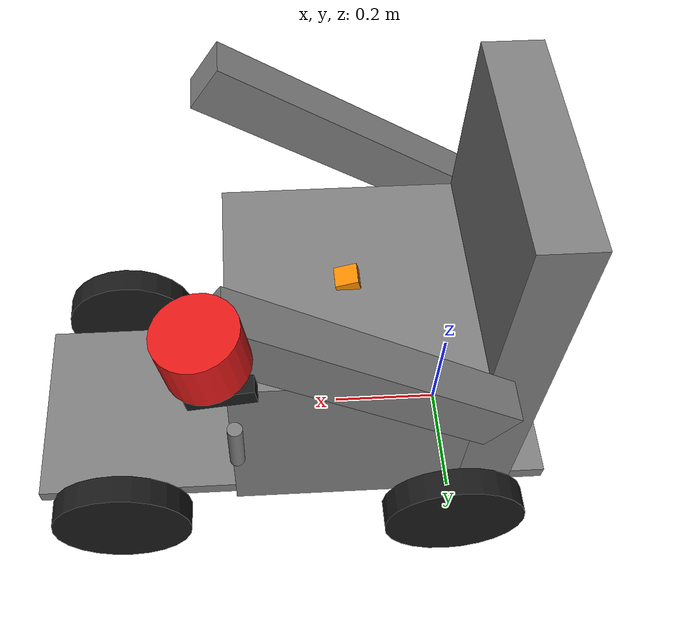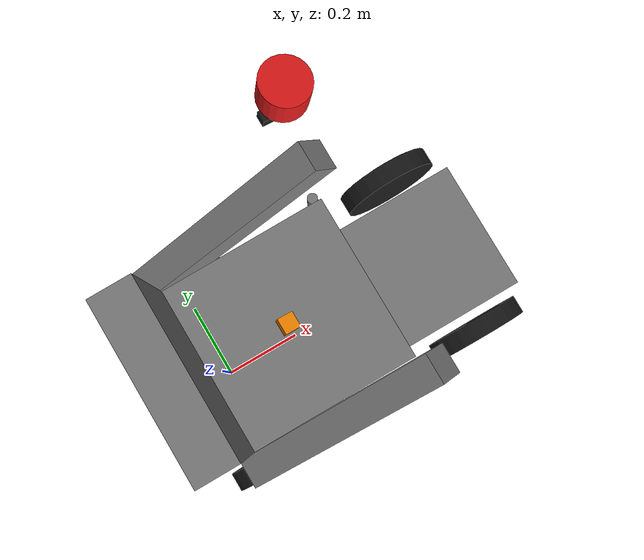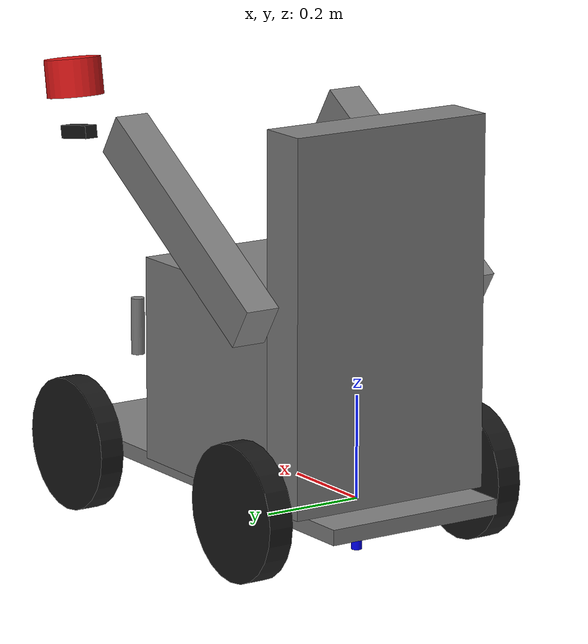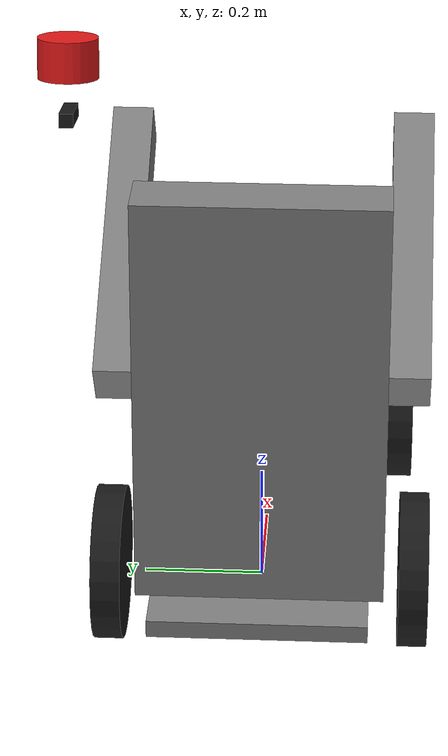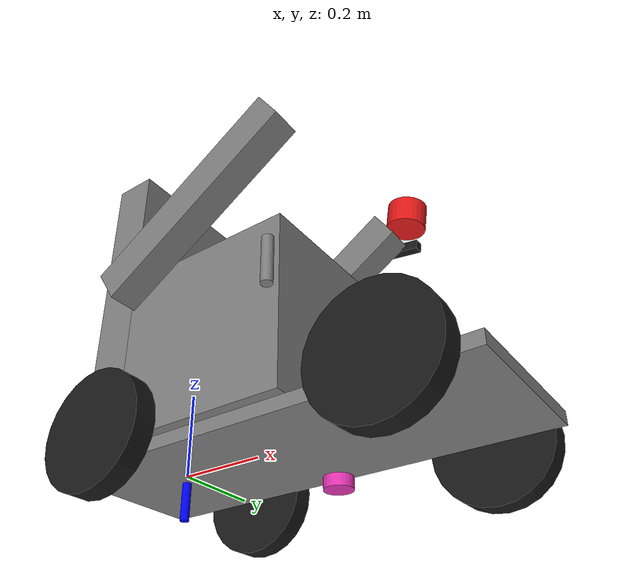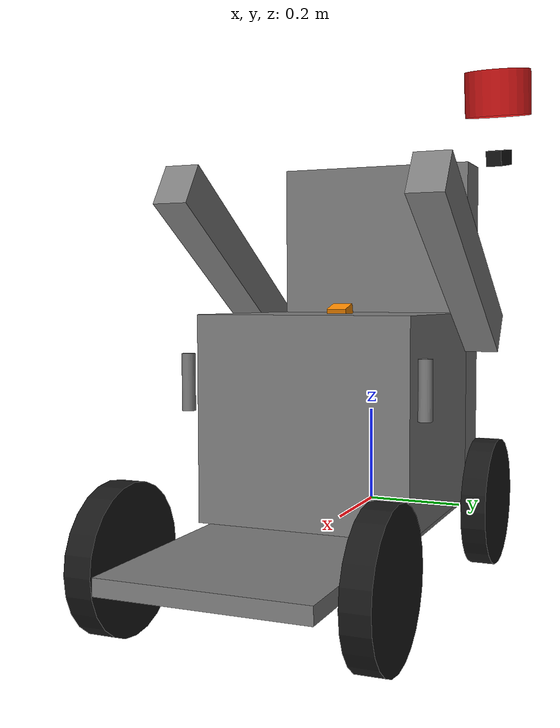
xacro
<?xml version="1.0"?>
<robot xmlns:xacro="http://www.ros.org/wiki/xacro" name="whill_cr2_with_sensors">

  <xacro:include filename="$(find whill_description)/urdf/whill_model_cr2.urdf"/>

  <xacro:property name="base_link_to_ground_z" value="-0.1175"/>

  <xacro:property name="imu_x"     value="0.20"/>
  <xacro:property name="imu_y"     value="0.0"/>
  <xacro:property name="imu_z"     value="0.42"/>
  <xacro:property name="imu_roll"  value="0.0"/>
  <xacro:property name="imu_pitch" value="0.286"/>
  <xacro:property name="imu_yaw"   value="0.0"/>

  <xacro:property name="velodyne_x"     value="0.42"/>
  <xacro:property name="velodyne_y"     value="0.36"/>
  <xacro:property name="velodyne_z"     value="0.78"/>
  <xacro:property name="velodyne_roll"  value="0.0"/>
  <xacro:property name="velodyne_pitch" value="0.157"/>
  <xacro:property name="velodyne_yaw"   value="0.0"/>

  <xacro:property name="camera_x"     value="0.0"/>
  <xacro:property name="camera_y"     value="0.0"/>
  <xacro:property name="camera_z"     value="-0.103"/>
  <xacro:property name="camera_roll"  value="0.0"/>
  <xacro:property name="camera_pitch" value="0.0"/>
  <xacro:property name="camera_yaw"   value="0.0"/>

  <xacro:property name="gnss_x"     value="0.40"/>
  <xacro:property name="gnss_y"     value="0.0"/>
  <xacro:property name="gnss_z"     value="-0.10"/>
  <xacro:property name="gnss_roll"  value="0.0"/>
  <xacro:property name="gnss_pitch" value="0.0"/>
  <xacro:property name="gnss_yaw"   value="0.0"/>

  <!-- ====================================================================
       Links and joints
       ==================================================================== -->

  <link name="base_footprint"/>
  <joint name="base_link_to_base_footprint" type="fixed">
    <parent link="base_link"/>
    <child  link="base_footprint"/>
    <origin xyz="0 0 ${base_link_to_ground_z}" rpy="0 0 0"/>
  </joint>

  <!-- IMU: RT 9-axis USB IMU. Visual is a small orange box so the chair
       model shows clearly where the IMU sits in RViz. -->
  <link name="imu_link">
    <visual>
      <geometry>
        <box size="0.04 0.04 0.02"/>
      </geometry>
      <material name="imu_orange">
        <color rgba="1.0 0.55 0.0 1.0"/>
      </material>
    </visual>
  </link>
  <joint name="base_link_to_imu" type="fixed">
    <parent link="base_link"/>
    <child  link="imu_link"/>
    <origin xyz="${imu_x} ${imu_y} ${imu_z}"
            rpy="${imu_roll} ${imu_pitch} ${imu_yaw}"/>
  </joint>

  <link name="velodyne">
    <visual>
      <geometry>
        <cylinder length="0.072" radius="0.054"/>
      </geometry>
      <material name="velodyne_red">
        <color rgba="0.9 0.1 0.1 1.0"/>
      </material>
    </visual>
  </link>
  <joint name="base_link_to_velodyne" type="fixed">
    <parent link="base_link"/>
    <child  link="velodyne"/>
    <origin xyz="${velodyne_x} ${velodyne_y} ${velodyne_z}"
            rpy="${velodyne_roll} ${velodyne_pitch} ${velodyne_yaw}"/>
  </joint>

  <link name="camera_link">
    <visual>
      <geometry>
        <box size="0.090 0.025 0.025"/>
      </geometry>
      <material name="camera_black">
        <color rgba="0.1 0.1 0.1 1.0"/>
      </material>
    </visual>
  </link>
  <joint name="velodyne_to_camera" type="fixed">
    <parent link="velodyne"/>
    <child  link="camera_link"/>
    <origin xyz="${camera_x} ${camera_y} ${camera_z}"
            rpy="${camera_roll} ${camera_pitch} ${camera_yaw}"/>
  </joint>

  <link name="gnss_link">
    <visual>
      <geometry>
        <cylinder length="0.025" radius="0.030"/>
      </geometry>
      <material name="gnss_magenta">
        <color rgba="0.9 0.2 0.7 1.0"/>
      </material>
    </visual>
  </link>
  <joint name="base_link_to_gnss" type="fixed">
    <parent link="base_link"/>
    <child  link="gnss_link"/>
    <origin xyz="${gnss_x} ${gnss_y} ${gnss_z}"
            rpy="${gnss_roll} ${gnss_pitch} ${gnss_yaw}"/>
  </joint>

</robot>

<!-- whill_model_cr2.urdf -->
<robot name="whill_model_cr2">

    <link name="base_link">
        <visual>
            <geometry>
                <cylinder length="0.2" radius="0.01"/>
            </geometry>
            <material name="blue">
                <color rgba="0.0 0.0 1.0 1.0"/>
            </material>
        </visual>
    </link>

    <link name="base_floor">
        <visual>
            <geometry>
                <box size="0.985 0.37 0.03"/>
            </geometry>
            <material name="grey">
                <color rgba="0.5 0.5 0.5 1.0"/>
            </material>
        </visual>
        <collision>
            <geometry>
                <box size="0.985 0.37 0.03"/>
            </geometry>
        </collision>
        <inertial>
            <origin xyz="0 0 0" rpy="0 0 0" />
            <mass value="30" />
            <inertia ixx="1.0"  ixy="0.0"   ixz="0.0"
                                iyy="1.0"   iyz="0.0"
                                            izz="1.0" />
        </inertial>
    </link>

    <joint name="base_floor_joint" type="fixed">
        <parent link="base_link" />
        <child link="base_floor" />
        <origin xyz="0.3 0 0" rpy="0 0 0"/>
    </joint>

    <link name="left_wheel">
        <visual>
            <geometry>
                <cylinder length="0.05" radius="0.1325"/>
            </geometry>
            <origin xyz="0 0 0" rpy="0 0 0" />
            <material name="black">
                <color rgba="0.1 0.1 0.1 1.0"/>
            </material>
        </visual>
        <collision>
            <geometry>
                <cylinder length="0.05" radius="0.1325"/>
            </geometry>
        </collision>
        <inertial>
            <origin xyz="0 0 0"/>
            <mass value="0.500"/>
            <inertia ixx="0.0013541667" ixy="0" ixz="0" iyy="0.0013541667" iyz="0" izz="0.0025"/>
        </inertial>
    </link>

    <joint name="left_wheel_joint" type="continuous">
        <parent link="base_floor" />
        <child link="left_wheel" />
        <origin xyz="-0.3 0.260 0.015" rpy="1.571 0 0" />
        <axis xyz="0 0 1" />
    </joint>

    <link name="right_wheel">
        <collision>
            <origin xyz="0 0 0" rpy="0 0 0" />
            <geometry>
                <cylinder length="0.05" radius="0.1325"/>
            </geometry>
        </collision>
        <visual>
            <origin xyz="0 0 0" rpy="0 0 0" />
            <geometry>
                <cylinder length="0.05" radius="0.1325"/>
            </geometry>
            <material name="black">
                <color rgba="0.1 0.1 0.1 1.0"/>
            </material>
        </visual>
        <inertial>
            <origin xyz="0 0 0"/>
            <mass value="0.500"/>
            <inertia ixx="0.0013541667" ixy="0" ixz="0" iyy="0.0013541667" iyz="0" izz="0.0025"/>
        </inertial>
    </link>

    <joint name="right_wheel_joint" type="continuous">
        <parent link="base_floor" />
        <child link="right_wheel" />
        <origin xyz="-0.3 -0.260 0.015" rpy="-1.571 0 0" />
        <axis xyz="0 0 -1" />
    </joint>

    <link name="left_front_wheel">
        <collision>
            <geometry>
                <cylinder length="0.05" radius="0.1325"/>
            </geometry>
        </collision>
        <visual>
            <geometry>
                <cylinder length="0.05" radius="0.1325"/>
            </geometry>
            <material name="black">
                <color rgba="0.1 0.1 0.1 1.0"/>
            </material>
        </visual>
        <inertial>
            <origin xyz="0 0 0" rpy="0 0 0" />
            <mass value="1.0" />
            <inertia ixx="1.0"  ixy="0.0"   ixz="0.0"
                                iyy="1.0"   iyz="0.0"
                                            izz="1.0" />
        </inertial>
    </link>

    <joint name="left_front_wheel_joint" type="fixed">
        <parent link="base_floor" />
        <child link="left_front_wheel" />
        <origin xyz="0.330 -0.235 0" rpy="-1.571 0 0" />
        <axis xyz="0 0 -1" />
    </joint>

    <link name="right_front_wheel">
        <collision>
            <geometry>
                <cylinder length="0.05" radius="0.1325"/>
            </geometry>
        </collision>
        <visual>
            <geometry>
                <cylinder length="0.05" radius="0.1325"/>
            </geometry>
            <material name="black">
                <color rgba="0.1 0.1 0.1 1.0"/>
            </material>
        </visual>
        <inertial>
            <origin xyz="0 0 0" rpy="0 0 0" />
            <mass value="1.0" />
            <inertia ixx="1.0"  ixy="0.0"   ixz="0.0"
                                iyy="1.0"   iyz="0.0"
                                            izz="1.0" />
        </inertial>
    </link>

    <joint name="right_front_wheel_joint" type="fixed">
        <parent link="base_floor" />
        <child link="right_front_wheel"/>
        <origin xyz="0.330 0.235 0" rpy="1.571 0 0" />
        <axis xyz="0 0 1" />
    </joint>

    <link name="seat">
        <visual>
            <geometry>
                <box size="0.42 0.42 0.40"/>
            </geometry>
            <material name="grey">
                <color rgba="0.5 0.5 0.5 1.0"/>
            </material>
        </visual>
        <collision>
            <geometry>
                <box size="0.42 0.42 0.40"/>
            </geometry>
        </collision>
        <inertial>
            <origin xyz="0 0 0" rpy="0 0 0" />
            <mass value="12" />
            <inertia ixx="1.0"  ixy="0.0"   ixz="0.0"
                                iyy="1.0"   iyz="0.0"
                                            izz="1.0" />
        </inertial>
    </link>

    <joint name="seat_joint" type="fixed">
        <parent link="base_floor" />
        <child link="seat" />
        <origin xyz="-0.10 0 0.215" rpy="0 0 0"/>
    </joint>

    <link name="left_sensor_arm">
        <collision>
            <geometry>
                <cylinder length="0.11" radius="0.013"/>
            </geometry>
        </collision>
        <visual>
            <geometry>
                <cylinder length="0.11" radius="0.013"/>
            </geometry>
            <material name="grey">
                <color rgba="0.5 0.5 0.5 1.0"/>
            </material>
        </visual>
    </link>

    <joint name="left_sensor_arm_joint" type="fixed">
        <parent link="seat"/>
        <child link="left_sensor_arm"/>
        <origin xyz="0.20 0.235 0.07" rpy="0 0 0"/>
    </joint>

    <link name="right_sensor_arm">
        <collision>
            <geometry>
                <cylinder length="0.11" radius="0.013"/>
            </geometry>
        </collision>
        <visual>
            <geometry>
                <cylinder length="0.11" radius="0.013"/>
            </geometry>
            <material name="grey">
                <color rgba="0.5 0.5 0.5 1.0"/>
            </material>
        </visual>
    </link>

    <joint name="right_sensor_arm_joint" type="fixed">
        <parent link="seat"/>
        <child link="right_sensor_arm"/>
        <origin xyz="0.20 -0.235 0.07" rpy="0 0 0"/>
    </joint>

    <link name="backrest">
        <visual>
            <geometry>
                <box size="0.10 0.42 0.72"/>
            </geometry>
            <material name="grey">
                <color rgba="0.5 0.5 0.5 1.0"/>
            </material>
        </visual>
        <collision>
            <geometry>
                <box size="0.10 0.42 0.72"/>
            </geometry>
        </collision>
        <inertial>
            <origin xyz="0 0 0" rpy="0 0 0" />
            <mass value="7" />
            <inertia ixx="1.0"  ixy="0.0"   ixz="0.0"
                                iyy="1.0"   iyz="0.0"
                                            izz="1.0" />
        </inertial>
    </link>

    <joint name="backrest_joint" type="fixed">
        <parent link="base_floor" />
        <child link="backrest" />
        <origin xyz="-0.36 0 0.375" rpy="0 0 0"/>
    </joint>

    <link name="left_arm">
        <visual>
            <geometry>
                <box size="0.09 0.07 0.535"/>
            </geometry>
            <material name="grey">
                <color rgba="0.5 0.5 0.5 1.0"/>
            </material>
        </visual>
        <collision>
            <geometry>
                <box size="0.09 0.07 0.535"/>
            </geometry>
        </collision>
    </link>

    <joint name="left_arm_joint" type="fixed">
        <parent link="seat" />
        <child link="left_arm" />
        <origin xyz="0 0.245 0.30" rpy="0 1.0 0"/>
    </joint>

    <link name="right_arm">
        <visual>
            <geometry>
                <box size="0.09 0.07 0.535"/>
            </geometry>
            <material name="grey">
                <color rgba="0.5 0.5 0.5 1.0"/>
            </material>
        </visual>
        <collision>
            <geometry>
                <box size="0.09 0.07 0.535"/>
            </geometry>
        </collision>
    </link>

    <joint name="right_arm_joint" type="fixed">
        <parent link="seat" />
        <child link="right_arm" />
        <origin xyz="0 -0.245 0.30" rpy="0 1.0 0"/>
    </joint>
</robot>
